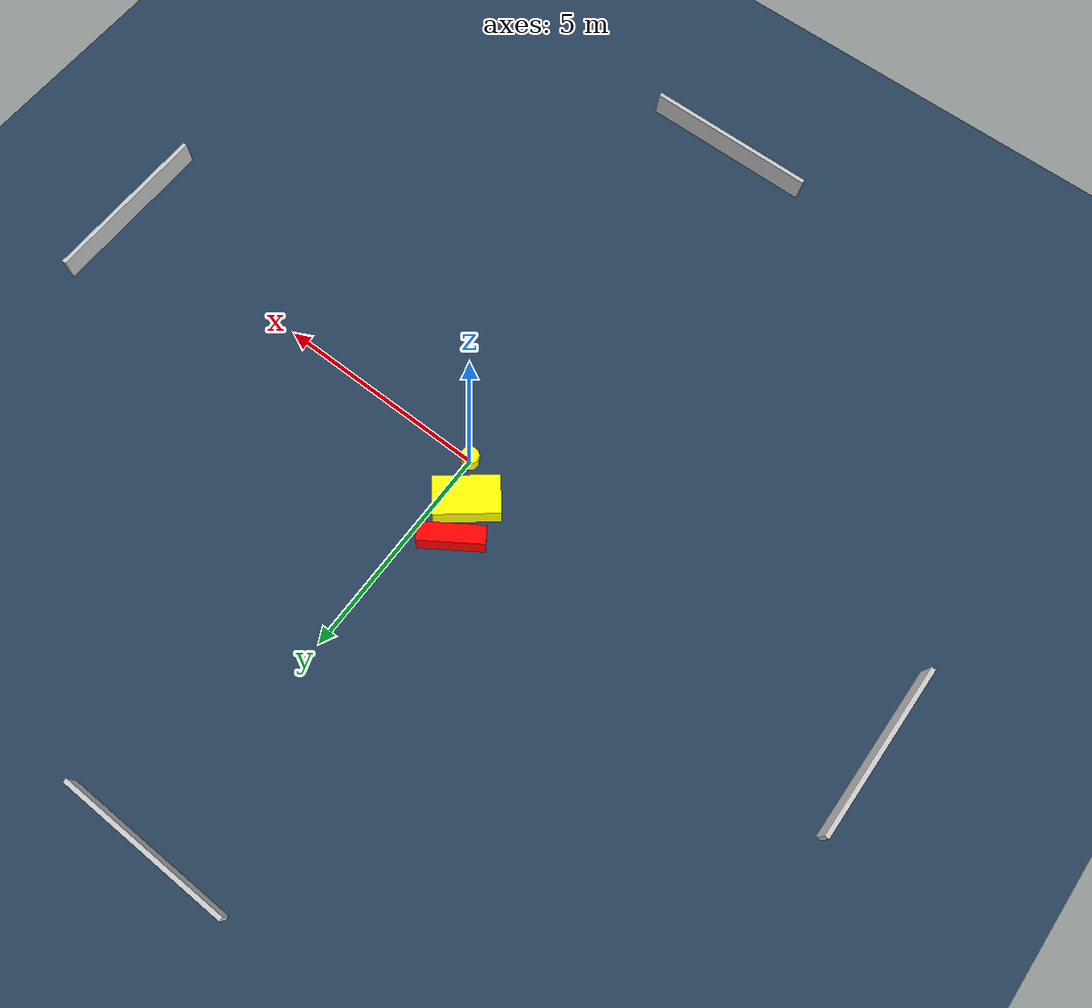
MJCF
<?xml version="1.0" ?>
<mujoco model="generated_environment">
  <option timestep="0.01" integrator="RK4" cone="elliptic"/>
  <default>
    <geom density="1"/>
  </default>
  <asset>
    <texture builtin="gradient" height="3072" name="skybox" rgb1="0.3 0.5 0.7" rgb2="0 0 0" type="skybox" width="512"/>
    <texture builtin="checker" height="300" name="groundplane" rgb1="0.2 0.3 0.4" rgb2="0.1 0.2 0.3" type="2d" width="300"/>
    <material name="groundplane" reflectance="0.2" texrepeat="5 5" texture="groundplane"/>
  </asset>
  <worldbody>
    <light dir="0 0 -1" directional="true" pos="0 0 1.5"/>
    <geom condim="3" friction="0.5 0.005 0.001" material="groundplane" name="floor" pos="0 0 0" size="0 0 0.05" type="plane"/>
    <body name="walls">
      <geom name="wall_1" condim="4" pos="-10.0 0.0 0.3" rgba="0.800000011920929 0.800000011920929 0.800000011920929 1.0" size="0.05 2.0 0.3" type="box"/>
      <geom name="wall_2" condim="4" pos="10.0 0.0 0.3" rgba="0.800000011920929 0.800000011920929 0.800000011920929 1.0" size="0.05 2.0 0.3" type="box"/>
      <geom name="wall_3" condim="4" pos="0.0 -10.0 0.3" rgba="0.800000011920929 0.800000011920929 0.800000011920929 1.0" size="2.0 0.05 0.3" type="box"/>
      <geom name="wall_4" condim="4" pos="0.0 10.0 0.3" rgba="0.800000011920929 0.800000011920929 0.800000011920929 1.0" size="2.0 0.05 0.3" type="box"/>
    </body>
    <body name="robot">
      <joint name="joint_x" type="slide" pos="0 0 0" axis="1 0 0"/>
      <joint name="joint_y" type="slide" pos="0 0 0" axis="0 1 0"/>
      <geom name="robot" type="cylinder" pos="0.0 0.0 0.2" size="0.2 0.2 0.0" mass="5.0" friction="1.0 0.005 0.0001" condim="4" rgba="1.0 1.0 0.0 1.0"/>
    </body>
    <body name="obstacle_1_movable">
      <geom name="obstacle_1_movable" condim="4" pos="-0.5210037612326154 0.7893582137369612 0.3" euler="0 0 39.11395392873157" friction="0.0 0.005 0.001" rgba="1.0 1.0 0.0 1.0" size="0.7218636887963619 0.4249409356726073 0.3" type="box" mass="0.1"/>
      <joint type="free"/>
    </body>
    <body name="obstacle_2_static">
      <geom name="obstacle_2_static" condim="4" pos="-0.7799846356532999 1.634654402733712 0.3" euler="0 0 214.02940139560027" friction="0.0 0.005 0.001" rgba="1.0 0.0 0.0 1.0" size="0.728136646141414 0.20514242361330595 0.3" type="box"/>
    </body>
  </worldbody>
  <actuator>
    <motor name="actuator_x" joint="joint_x" gear="1" ctrlrange="-1 1"/>
    <motor name="actuator_y" joint="joint_y" gear="1" ctrlrange="-1 1"/>
  </actuator>
</mujoco>
